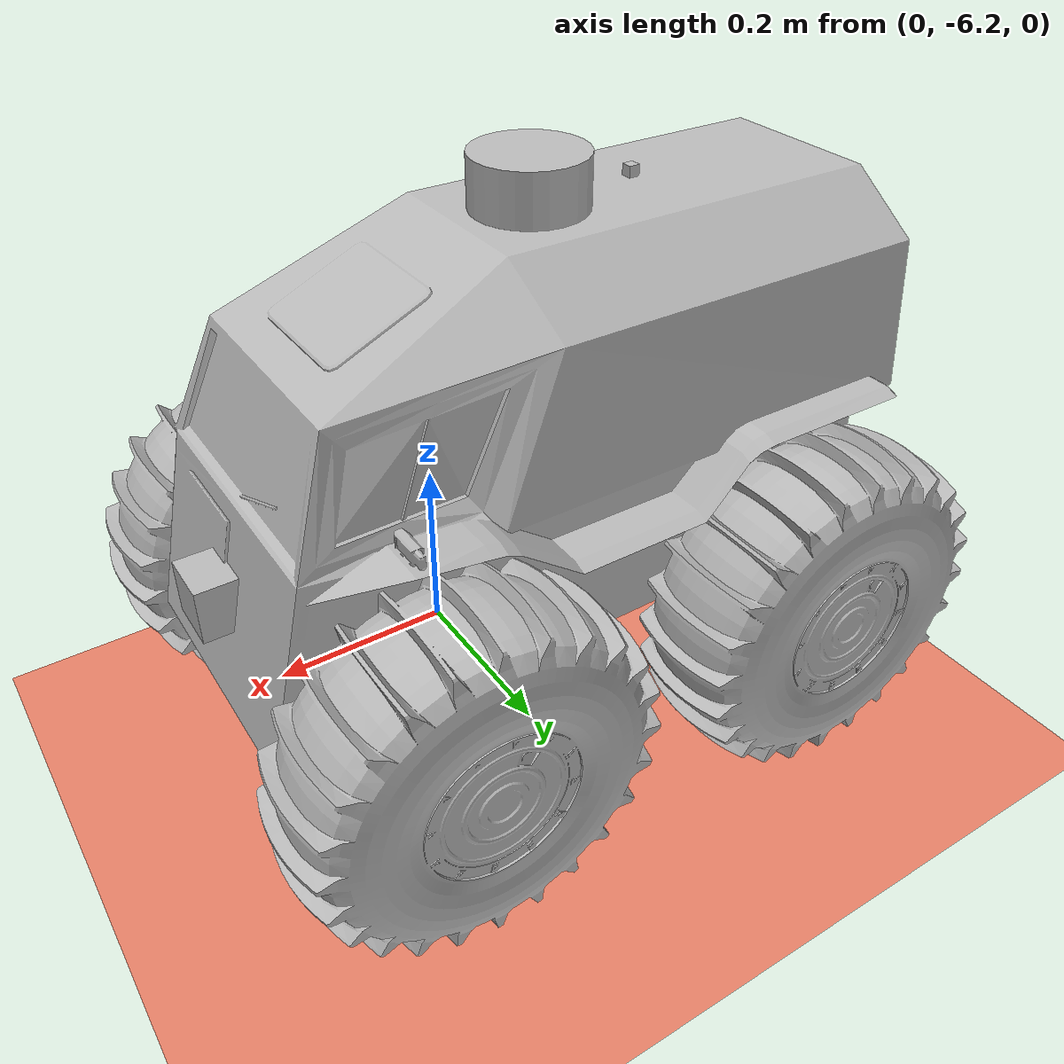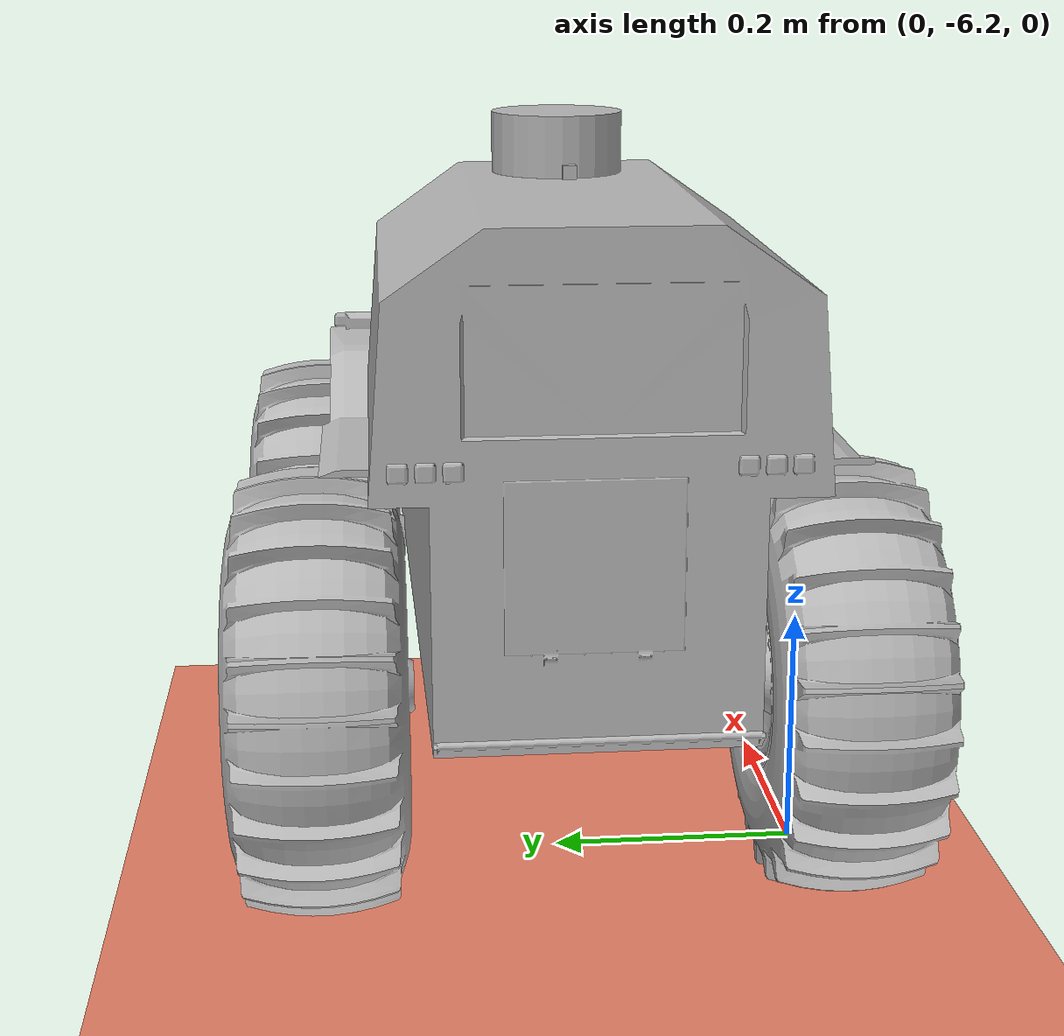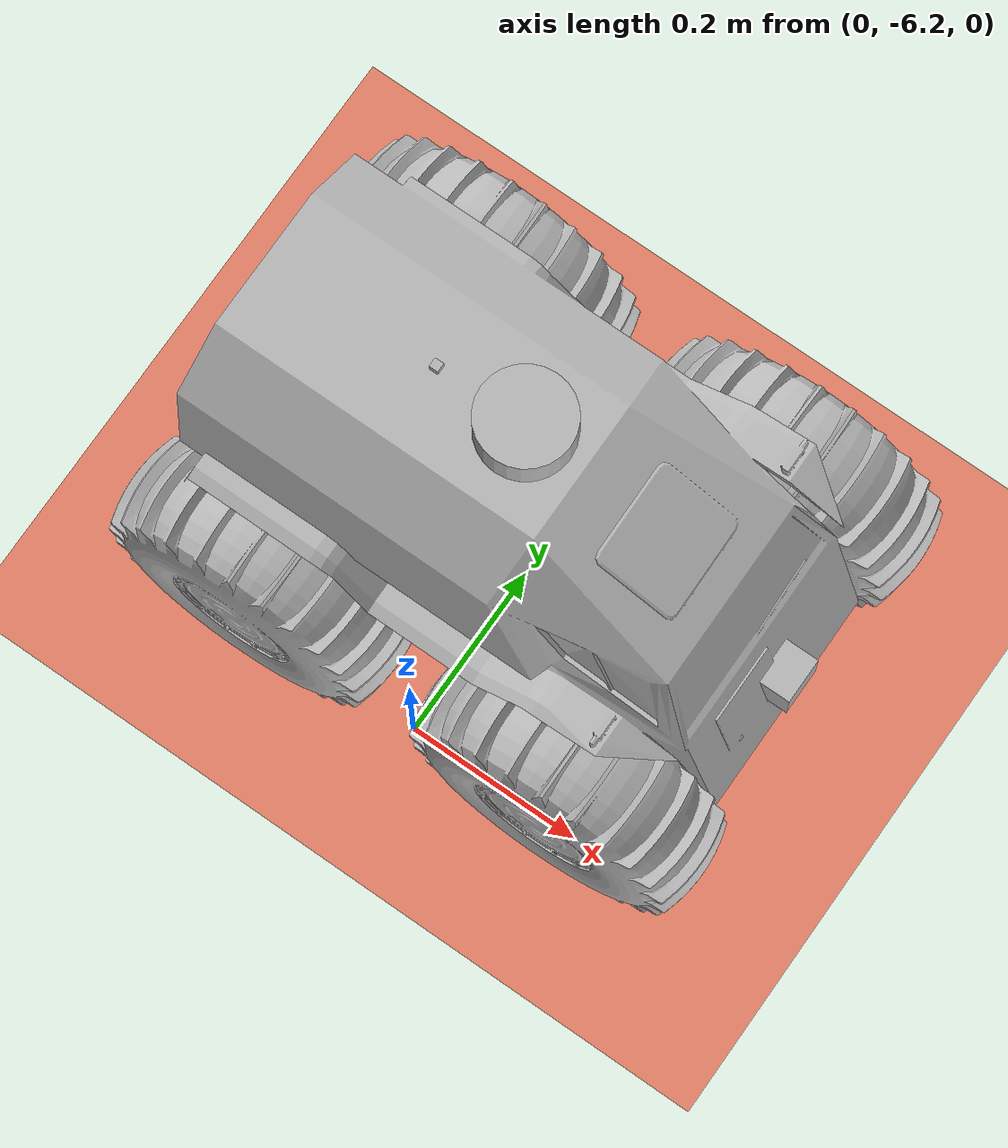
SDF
<sdf version="1.10">
 <world name="track">
  <physics name="1ms" type="ignored">
   <max_step_size>0.001</max_step_size>
   <real_time_factor>1.0</real_time_factor>
  </physics>
  <plugin filename="gz-sim-physics-system" name="gz::sim::systems::Physics"/>
  <plugin filename="gz-sim-user-commands-system" name="gz::sim::systems::UserCommands"/>
  <plugin filename="gz-sim-scene-broadcaster-system" name="gz::sim::systems::SceneBroadcaster"/>
  <plugin filename="gz-sim-sensors-system" name="gz::sim::systems::Sensors">
   <render_engine>ogre2</render_engine>
  </plugin>
  <plugin filename="gz-sim-imu-system" name="gz::sim::systems::Imu"/>
  <plugin filename="gz-sim-navsat-system" name="gz::sim::systems::NavSat"/>
  <spherical_coordinates>
   <surface_model>EARTH_WGS84</surface_model>
   <world_frame_orientation>ENU</world_frame_orientation>
   <latitude_deg>41.19115</latitude_deg>
   <longitude_deg>-111.94426</longitude_deg>
   <elevation>1200</elevation>
   <heading_deg>0</heading_deg>
  </spherical_coordinates>
  <light type="directional" name="sun">
   <pose>0 0 10 0 0 0</pose>
   <diffuse>0.8 0.8 0.8 1</diffuse>
   <specular>0.2 0.2 0.2 1</specular>
   <attenuation>
    <range>1000</range>
    <constant>0.9</constant>
    <linear>0.01</linear>
    <quadratic>0.001</quadratic>
   </attenuation>
   <direction>-0.5 0.1 -0.9</direction>
  </light>
  <model name="ground_plane">
   <static>true</static>
   <link name="link">
    <collision name="collision">
     <geometry><plane><normal>0 0 1</normal><size>100 100</size></plane></geometry>
    </collision>
    <visual name="visual">
     <geometry><plane><normal>0 0 1</normal><size>100 100</size></plane></geometry>
     <material><ambient>0.9 0.5 0.4 1</ambient><diffuse>0.9 0.5 0.4 1</diffuse></material>
    </visual>
   </link>
  </model>
  <include><pose>0 -6 0.02 0 0 0</pose><uri>file:///models/robot/combined.sdf</uri></include>
 </world>
</sdf>

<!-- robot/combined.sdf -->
<sdf version="1.10">
  <model name="robot_car" canonical_link="base_link">
    <!-- ======================== LINKS ======================== -->
    <!-- Base -->
    <link name="base_link">
      <pose relative_to="__model__">0 0 0 0 0 0</pose>
    </link>

    <!-- Chassis -->
    <link name="chassis">
      <pose relative_to="base_link">0 0 0.242 0 0 0</pose>
      <!-- Inertial -->
      <inertial>
        <mass>2.0</mass>
        <inertia>
          <ixx>0.126164</ixx>
          <ixy>0</ixy>
          <ixz>0</ixz>
          <iyy>0.416519</iyy>
          <iyz>0</iyz>
          <izz>0.481014</izz>
        </inertia>
      </inertial>
      <!-- Collision geometry -->
      <collision name="chassis_collision">
        <geometry>
          <box>
            <size>0.586 0.242 0.343</size>
          </box>
        </geometry>
      </collision>
      <!-- Visual geometry -->
      <visual name="chassis_visual">
        <pose>0 0 0 1.5707 0 1.5707</pose>
        <geometry>
          <mesh>
            <uri>package://robot/models/robot/meshes/shassis.obj</uri>
            <scale>0.505 0.505 0.505</scale>
          </mesh>
        </geometry>
      </visual>
    </link>

    <joint name="chassis_joint" type="fixed">
      <parent>base_link</parent>
      <child>chassis</child>
      <pose>0 0 0 0 0 0</pose>
    </joint>
    <link name='base_footprint'>
      <pose relative_to='base_link'>0 0 0 0 0 0</pose>
    </link>
    <joint name='base_footprint_joint' type='fixed'>
      <parent>base_link</parent>
      <child>base_footprint</child>
    </joint>
    <!-- Left wheel -->
    <link name="left_wheel">
      <pose relative_to="chassis">-0.182 0.191 -0.040 1.5707 0 0</pose>
      <inertial>
        <mass>0.07</mass>
        <inertia>
          <ixx>0.01556</ixx>
          <ixy>0.0</ixy>
          <ixz>0.0</ixz>
          <iyy>0.01556</iyy>
          <iyz>0.0</iyz>
          <izz>0.026244</izz>
        </inertia>
      </inertial>
      <collision name="left_wheel_collision">
        <geometry>
          <cylinder>
            <radius>0.162</radius>
            <length>0.121</length>
          </cylinder>
        </geometry>
      </collision>
      <visual name="left_wheel_visual">
        <pose>0 0 0.07 -1.5707 0 0</pose>
        <geometry>
          <mesh>
            <uri>package://robot/models/robot/meshes/wheel.obj</uri>
            <scale>0.202 0.202 0.202</scale>
          </mesh>
        </geometry>
      </visual>
    </link>

    <!-- Right wheel -->
    <link name="right_wheel">
      <pose relative_to="chassis">-0.182 -0.191 -0.040 -1.5707 0 0</pose>
      <inertial>
        <mass>0.07</mass>
        <inertia>
          <ixx>0.01556</ixx>
          <ixy>0.0</ixy>
          <ixz>0.0</ixz>
          <iyy>0.01556</iyy>
          <iyz>0.0</iyz>
          <izz>0.026244</izz>
        </inertia>
      </inertial>
      <collision name="right_wheel_collision">
        <geometry>
          <cylinder>
            <radius>0.162</radius>
            <length>0.121</length>
          </cylinder>
        </geometry>
      </collision>
      <visual name="right_wheel_visual">
        <pose>0 0 0.07 -1.5707 0 0</pose>
        <geometry>
          <mesh>
            <uri>package://robot/models/robot/meshes/wheel.obj</uri>
            <scale>0.202 0.202 0.202</scale>
          </mesh>
        </geometry>
      </visual>
    </link>

    <!-- Left front wheel -->
    <link name="left_front_wheel">
      <pose relative_to="chassis">0.182 0.191 -0.040 1.5707 0 0</pose>
      <inertial>
        <mass>0.07</mass>
        <inertia>
          <ixx>0.01556</ixx>
          <ixy>0.0</ixy>
          <ixz>0.0</ixz>
          <iyy>0.01556</iyy>
          <iyz>0.0</iyz>
          <izz>0.026244</izz>
        </inertia>
      </inertial>
      <collision name="left_front_wheel_collision">
        <geometry>
          <cylinder>
            <radius>0.162</radius>
            <length>0.121</length>
          </cylinder>
        </geometry>
      </collision>
      <visual name="left_front_wheel_visual">
        <pose>0 0 0.07 -1.5707 0 0</pose>
        <geometry>
          <mesh>
            <uri>package://robot/models/robot/meshes/wheel.obj</uri>
            <scale>0.202 0.202 0.202</scale>
          </mesh>
        </geometry>
      </visual>
    </link>

    <!-- Right front wheel -->
    <link name="right_front_wheel">
      <pose relative_to="chassis">0.182 -0.191 -0.040 -1.5707 0 0</pose>
      <inertial>
        <mass>0.07</mass>
        <inertia>
          <ixx>0.01556</ixx>
          <ixy>0.0</ixy>
          <ixz>0.0</ixz>
          <iyy>0.01556</iyy>
          <iyz>0.0</iyz>
          <izz>0.026244</izz>
        </inertia>
      </inertial>
      <collision name="right_front_wheel_collision">
        <geometry>
          <cylinder>
            <radius>0.162</radius>
            <length>0.121</length>
          </cylinder>
        </geometry>
      </collision>
      <visual name="right_front_wheel_visual">
        <pose>0 0 0.07 -1.5707 0 0</pose>
        <geometry>
          <mesh>
            <uri>package://robot/models/robot/meshes/wheel.obj</uri>
            <scale>0.202 0.202 0.202</scale>
          </mesh>
        </geometry>
      </visual>
    </link>

    <!-- ======================== SENSORS ======================== -->

    <!-- Camera sensor -->
    <link name="camera_body">
      <pose relative_to="chassis">0.3 0 0.05 0 0 0</pose>
      <inertial>
        <mass>0.1</mass>
        <inertia>
          <ixx>0.000166667</ixx>
          <iyy>0.000166667</iyy>
          <izz>0.000166667</izz>
        </inertia>
      </inertial>
      <collision name="collision">
        <geometry>
          <box>
            <size>0.05 0.05 0.05</size>
          </box>
        </geometry>
      </collision>
      <visual name="visual">
        <geometry>
          <box>
            <size>0.05 0.05 0.05</size>
          </box>
        </geometry>
      </visual>
      <sensor name="camera" type="camera">
        <camera>
          <optical_frame_id>camera</optical_frame_id>
          <horizontal_fov>1.047</horizontal_fov>
          <image>
            <width>320</width>
            <height>240</height>
          </image>
          <clip>
            <near>0.1</near>
            <far>100</far>
          </clip>
        </camera>
        <always_on>1</always_on>
        <update_rate>30</update_rate>
        <visualize>true</visualize>
        <topic>camera</topic>
      </sensor>
    </link>
    <link name = 'camera'>
      <pose relative_to='camera_body'>0.01 0 0 1.5708 3.141 1.5707</pose>
    </link>
    <joint name='camera_optical_joint' type='fixed'>
      <parent>camera_body</parent>
      <child>camera</child>
    </joint>
    <joint name="camera_joint" type="fixed">
      <parent>chassis</parent>
      <child>camera_body</child>
    </joint>

    <!-- GPS sensor -->
    <link name="gps_link">
      <pose relative_to="chassis">-0.1 0 0.32 0 0 0</pose>
      <inertial>
        <mass>0.1</mass>
        <inertia>
          <ixx>0.000166667</ixx>
          <iyy>0.000166667</iyy>
          <izz>0.000166667</izz>
        </inertia>
      </inertial>
      <collision name="collision">
        <geometry>
          <box>
            <size>0.01 0.01 0.01</size>
          </box>
        </geometry>
      </collision>
      <visual name="visual">
        <geometry>
          <box>
            <size>0.01 0.01 0.01</size>
          </box>
        </geometry>
      </visual>
      <sensor name="navsat_sensor" type="navsat">
        <always_on>1</always_on>
        <update_rate>30</update_rate>
        <topic>navsat</topic>
        <gz_frame_id>gps</gz_frame_id>
      </sensor>
    </link>
    <joint name="gps_joint" type="fixed">
      <parent>chassis</parent>
      <child>gps_link</child>
    </joint>

    <!-- Lidar sensor -->
    <link name="lidar">
      <pose relative_to="chassis">0.0 0.0 0.33 0 0 0</pose>
      <inertial>
        <mass>0.01</mass>
        <inertia>
          <ixx>0.000166667</ixx>
          <iyy>0.000166667</iyy>
          <izz>0.000166667</izz>
        </inertia>
      </inertial>
      <collision name="collision">
        <geometry>
          <box>
            <size>0.01 0.01 0.01</size>
          </box>
        </geometry>
      </collision>
      <visual name="visual">
        <geometry>
          <cylinder>
            <radius>0.05</radius>
            <length>0.05</length>
          </cylinder>
        </geometry>
      </visual>
      <sensor name="gpu_lidar" type="gpu_lidar">
        <pose relative_to="lidar">0 0 0.0 0 0 0</pose>
        <topic>scan</topic>
        <gz_frame_id>lidar</gz_frame_id>
        <update_rate>10</update_rate>
        <lidar>
          <scan>
            <horizontal>
              <samples>1081</samples>
              <resolution>1</resolution>
              <min_angle>-2.356</min_angle>
              <max_angle>2.356</max_angle>
            </horizontal>
          </scan>
          <range>
            <min>0.05</min>
            <max>10.0</max>
            <resolution>0.01</resolution>
          </range>
        </lidar>
        <alwaysOn>1</alwaysOn>
        <visualize>true</visualize>
      </sensor>
    </link>
    <joint name="lidar_joint" type="fixed">
      <parent>chassis</parent>
      <child>lidar</child>
    </joint>

    <!-- IMU sensor (new) -->
    <link name="imu_link">
      <!-- Adjust the pose relative to chassis as needed -->
      <pose relative_to="chassis">-0.15 0 0.32 0 0 0</pose>
      <sensor name="imu_sensor" type="imu">
        <always_on>1</always_on>
        <update_rate>50</update_rate>
        <visualize>true</visualize>
        <topic>imu</topic>
        <gz_frame_id>imu</gz_frame_id>
      </sensor>
    </link>
    <joint name="imu_joint" type="fixed">
      <parent>chassis</parent>
      <child>imu_link</child>
      <pose>0 0 0 0 0 0</pose>
    </joint>

    <!-- ======================== JOINTS ======================== -->
    <!-- Left wheel joint -->
    <joint name="left_wheel_joint" type="revolute">
      <parent>chassis</parent>
      <child>left_wheel</child>
      <axis>
        <xyz>0 0 -1</xyz>
      </axis>
    </joint>

    <!-- Right wheel joint -->
    <joint name="right_wheel_joint" type="revolute">
      <parent>chassis</parent>
      <child>right_wheel</child>
      <axis>
        <xyz>0 0 1</xyz>
      </axis>
    </joint>

    <!-- Left front wheel joint -->
    <joint name="left_front_wheel_joint" type="revolute">
      <parent>chassis</parent>
      <child>left_front_wheel</child>
      <axis>
        <xyz>0 0 -1</xyz>
      </axis>
    </joint>

    <!-- Right front wheel joint -->
    <joint name="right_front_wheel_joint" type="revolute">
      <parent>chassis</parent>
      <child>right_front_wheel</child>
      <axis>
        <xyz>0 0 1</xyz>
      </axis>
    </joint>

    <!-- ======================== DIFF DRIVE & KEYBOARD PLUGINS ======================== -->
    <plugin filename="gz-sim-diff-drive-system" name="gz::sim::systems::DiffDrive">
      <!-- Left-side wheel joints -->
      <left_joint>left_wheel_joint</left_joint>
      <left_joint>left_front_wheel_joint</left_joint>
      <!-- Right-side wheel joints -->
      <right_joint>right_wheel_joint</right_joint>
      <right_joint>right_front_wheel_joint</right_joint>
      <wheel_separation>0.586</wheel_separation>
      <wheel_radius>0.161</wheel_radius>
      <min_velocity>-1.0</min_velocity>
      <max_velocity>1.0</max_velocity>
      <min_acceleration>-3.0</min_acceleration>
      <max_acceleration>3.0</max_acceleration>
      <odom_publish_frequency>30</odom_publish_frequency>
      <odom_topic>odom</odom_topic>
      <tf_topic>tf</tf_topic>
      <frame_id>odom</frame_id>
      <child_frame_id>base_link</child_frame_id>
      <topic>cmd_vel</topic>
    </plugin>

    <!-- Keyboard controls: arrow keys to publish Twist commands -->
    <plugin filename="gz-sim-triggered-publisher-system" name="gz::sim::systems::TriggeredPublisher">
      <input type="gz.msgs.Int32" topic="/keyboard/keypress">
        <match field="data">16777235</match>
      </input>
      <output type="gz.msgs.Twist" topic="/cmd_vel">
        linear: {x: 0.0}, angular: {z: -0.5}
      </output>
    </plugin>

    <plugin filename="gz-sim-triggered-publisher-system" name="gz::sim::systems::TriggeredPublisher">
      <input type="gz.msgs.Int32" topic="/keyboard/keypress">
        <match field="data">16777237</match>
      </input>
      <output type="gz.msgs.Twist" topic="/cmd_vel">
        linear: {x: 0.0}, angular: {z: 0.5}
      </output>
    </plugin>

    <plugin filename="gz-sim-triggered-publisher-system" name="gz::sim::systems::TriggeredPublisher">
      <input type="gz.msgs.Int32" topic="/keyboard/keypress">
        <match field="data">16777234</match>
      </input>
      <output type="gz.msgs.Twist" topic="/cmd_vel">
        linear: {x: -0.5}, angular: {z: 0.0}
      </output>
    </plugin>

    <plugin filename="gz-sim-triggered-publisher-system" name="gz::sim::systems::TriggeredPublisher">
      <input type="gz.msgs.Int32" topic="/keyboard/keypress">
        <match field="data">16777236</match>
      </input>
      <output type="gz.msgs.Twist" topic="/cmd_vel">
        linear: {x: 0.5}, angular: {z: 0.0}
      </output>
    </plugin>

    <plugin filename="gz-sim-triggered-publisher-system" name="gz::sim::systems::TriggeredPublisher">
      <input type="gz.msgs.Int32" topic="/keyboard/keypress">
        <match field="data">48</match>
      </input>
      <output type="gz.msgs.Twist" topic="/cmd_vel">
        linear: {x: 0.0}, angular: {z: 0.0}
      </output>
    </plugin>

    <plugin
      filename="gz-sim-joint-state-publisher-system"
      name="gz::sim::systems::JointStatePublisher">
    </plugin>

  </model>
</sdf>
